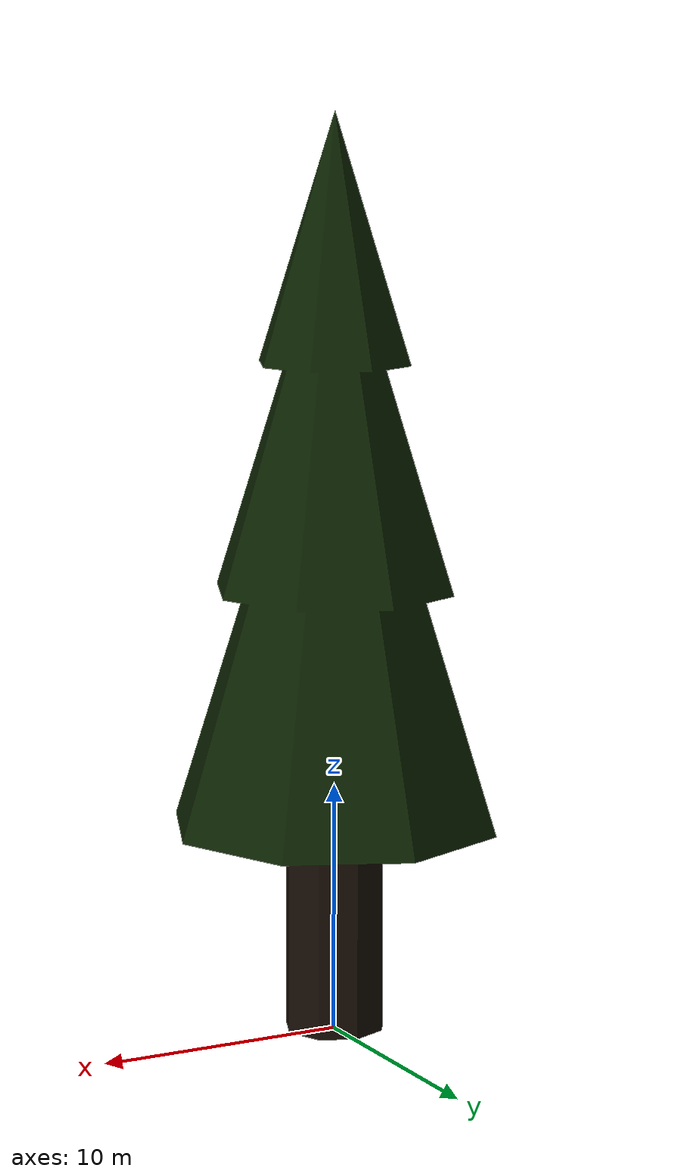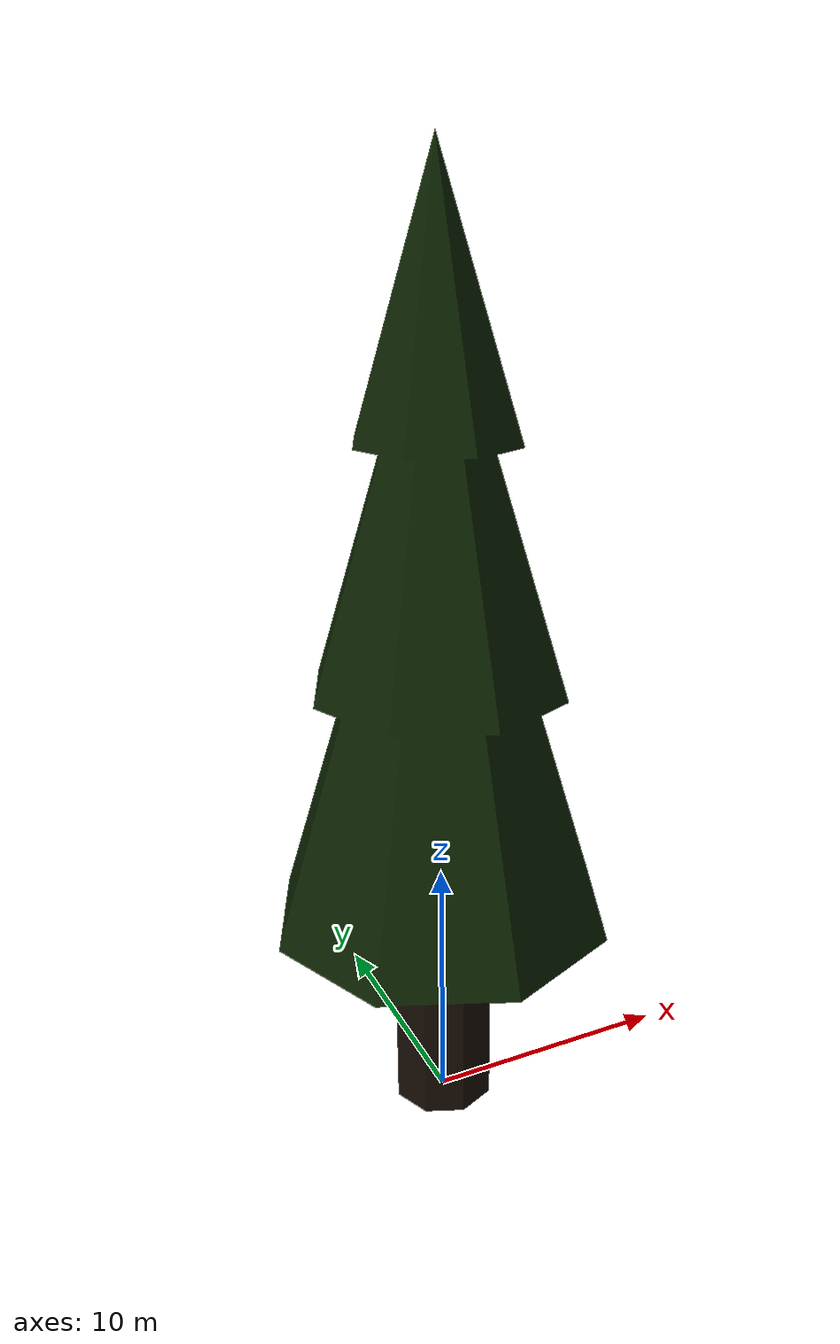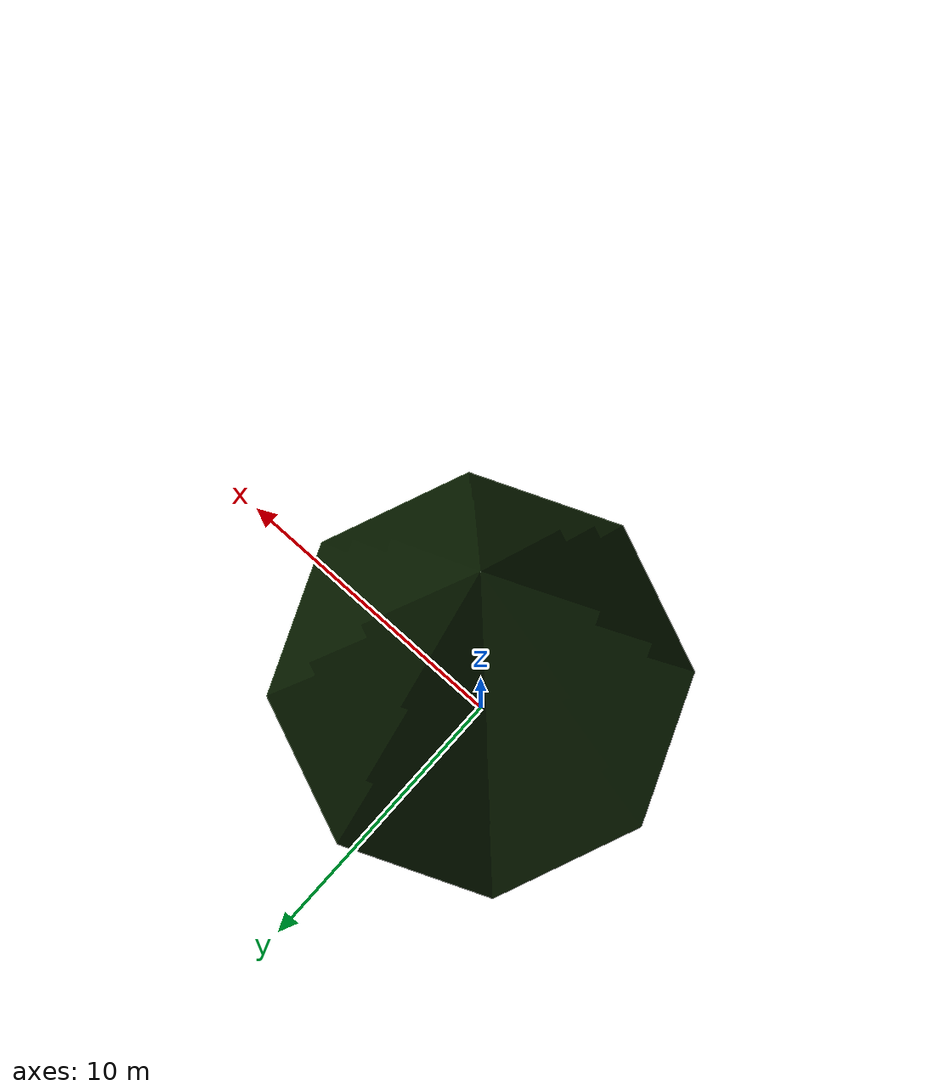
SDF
<sdf version="1.7">
<model name="lowpolytree_3">
    <static>true</static>
    <link name="lowpolytree_3">
        <pose>0 0 0 0 0 0</pose>
        <collision name="lowpolytree_3_collision">
            <geometry>
                <mesh>
                    <uri>model://lowpolytree_3/meshes/lowpolytree_3.dae</uri>
                </mesh>
            </geometry>
        </collision>
        <visual name="lowpolytree_3_visual">
            <geometry>
                <mesh>
                    <uri>model://lowpolytree_3/meshes/lowpolytree_3.dae</uri>
                </mesh>
            </geometry>
        </visual>
    </link>
</model>
</sdf>
